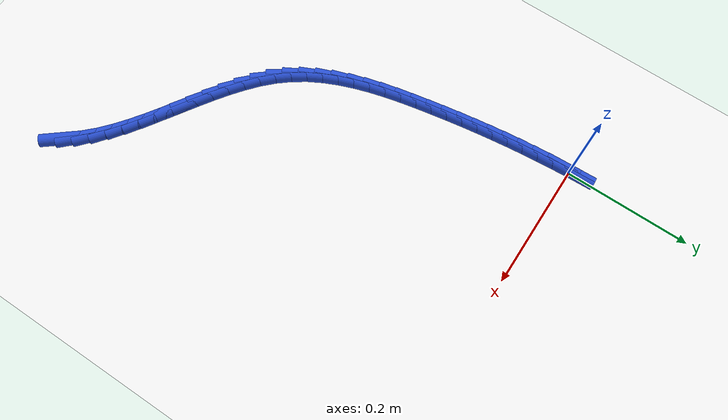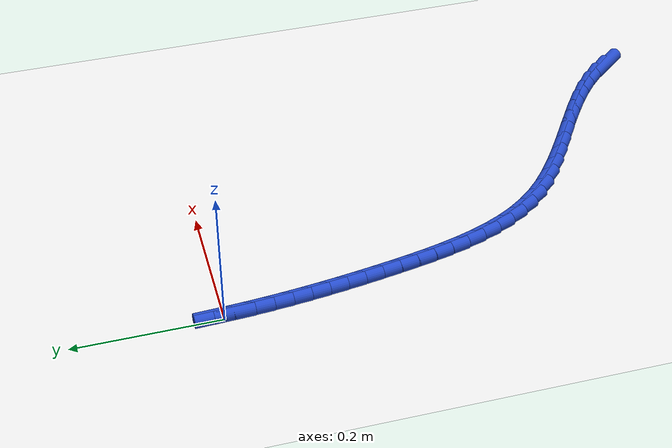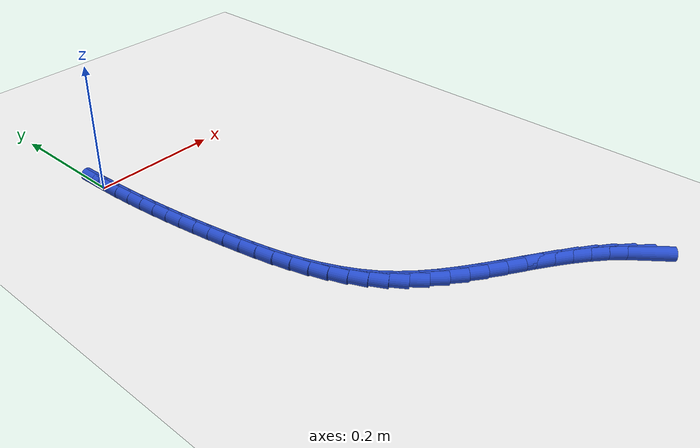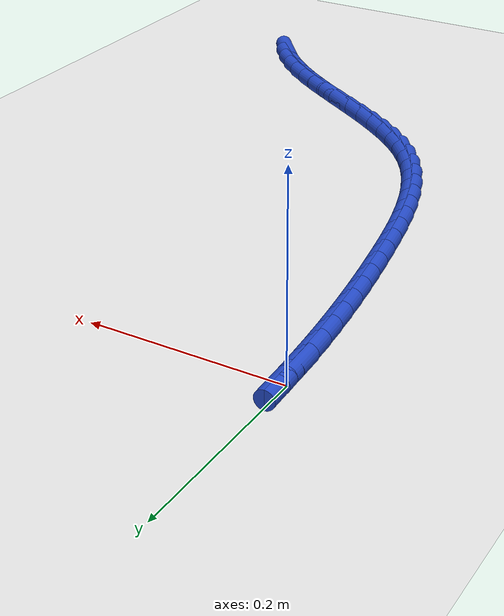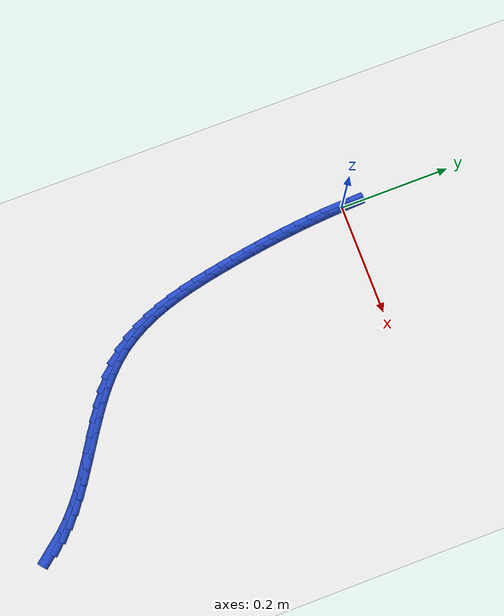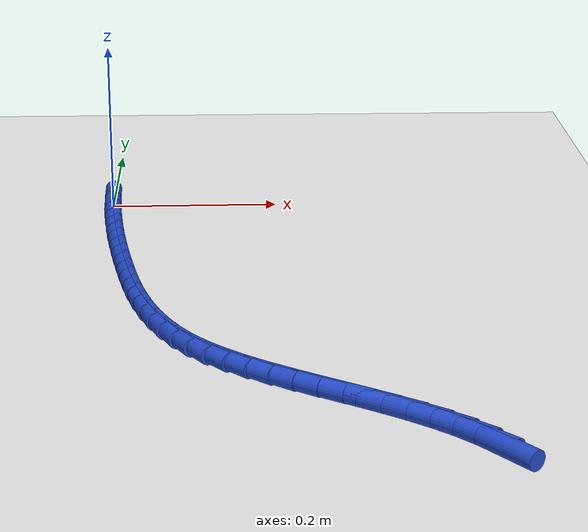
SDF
<sdf version="1.6">
 <world name="default">
  <model name="ground_plane">
   <static>1</static>
   <link name="link">
    <collision name="collision">
     <geometry><plane><normal>0 0 1</normal><size>100 100</size></plane></geometry>
     <surface><friction><ode><mu>100</mu><mu2>50</mu2></ode></friction></surface>
    </collision>
    <visual name="visual">
     <cast_shadows>0</cast_shadows>
     <geometry><plane><normal>0 0 1</normal><size>100 100</size></plane></geometry>
     <material>
      <script><uri>file://media/materials/scripts/gazebo.material</uri><name>Gazebo/WhiteGlow</name></script>
     </material>
    </visual>
   </link>
  </model>
  <model name="line">
   <link name="link_0">
    <pose>7.589415207398531e-18 -2.0816681711721685e-17 0.01 0 1.57 -1.529208545914777</pose>
    <collision name="collision">
     <geometry><cylinder><radius>0.01</radius><length>0.08</length></cylinder></geometry>
    </collision>
    <visual name="visual">
     <material>
      <script><name>Gazebo/Blue</name><uri>file://media/materials/scripts/gazebo.material</uri></script>
     </material>
     <geometry><cylinder><radius>0.01</radius><length>0.08</length></cylinder></geometry>
    </visual>
   </link>
   <link name="link_238">
    <pose>0.3786932814199983 -0.6701580470066092 0.01 0 1.57 -0.8928095195751697</pose>
    <collision name="collision">
     <geometry><cylinder><radius>0.01</radius><length>0.08</length></cylinder></geometry>
    </collision>
    <visual name="visual">
     <material>
      <script><name>Gazebo/Blue</name><uri>file://media/materials/scripts/gazebo.material</uri></script>
     </material>
     <geometry><cylinder><radius>0.01</radius><length>0.08</length></cylinder></geometry>
    </visual>
   </link>
   <link name="link_239">
    <pose>0.36328954359764976 -0.6510309784829611 0.01 0 1.57 -0.7975364531974951</pose>
    <collision name="collision">
     <geometry><cylinder><radius>0.01</radius><length>0.08</length></cylinder></geometry>
    </collision>
    <visual name="visual">
     <material>
      <script><name>Gazebo/Blue</name><uri>file://media/materials/scripts/gazebo.material</uri></script>
     </material>
     <geometry><cylinder><radius>0.01</radius><length>0.08</length></cylinder></geometry>
    </visual>
   </link>
   <link name="link_240">
    <pose>0.3459330431427901 -0.633247922964782 0.01 0 1.57 -0.7202766609170019</pose>
    <collision name="collision">
     <geometry><cylinder><radius>0.01</radius><length>0.08</length></cylinder></geometry>
    </collision>
    <visual name="visual">
     <material>
      <script><name>Gazebo/Blue</name><uri>file://media/materials/scripts/gazebo.material</uri></script>
     </material>
     <geometry><cylinder><radius>0.01</radius><length>0.08</length></cylinder></geometry>
    </visual>
   </link>
   <link name="link_241">
    <pose>0.32694284852817956 -0.6165829352449441 0.01 0 1.57 -0.6604361286175688</pose>
    <collision name="collision">
     <geometry><cylinder><radius>0.01</radius><length>0.08</length></cylinder></geometry>
    </collision>
    <visual name="visual">
     <material>
      <script><name>Gazebo/Blue</name><uri>file://media/materials/scripts/gazebo.material</uri></script>
     </material>
     <geometry><cylinder><radius>0.01</radius><length>0.08</length></cylinder></geometry>
    </visual>
   </link>
   <link name="link_242">
    <pose>0.30663802822657676 -0.6008100701163169 0.01 0 1.57 -0.6168881803582916</pose>
    <collision name="collision">
     <geometry><cylinder><radius>0.01</radius><length>0.08</length></cylinder></geometry>
    </collision>
    <visual name="visual">
     <material>
      <script><name>Gazebo/Blue</name><uri>file://media/materials/scripts/gazebo.material</uri></script>
     </material>
     <geometry><cylinder><radius>0.01</radius><length>0.08</length></cylinder></geometry>
    </visual>
   </link>
   <link name="link_243">
    <pose>0.28533765071074196 -0.5857033823717723 0.01 0 1.57 -0.5884816346551972</pose>
    <collision name="collision">
     <geometry><cylinder><radius>0.01</radius><length>0.08</length></cylinder></geometry>
    </collision>
    <visual name="visual">
     <material>
      <script><name>Gazebo/Blue</name><uri>file://media/materials/scripts/gazebo.material</uri></script>
     </material>
     <geometry><cylinder><radius>0.01</radius><length>0.08</length></cylinder></geometry>
    </visual>
   </link>
   <link name="link_244">
    <pose>0.2633607844534336 -0.5710369268041807 0.01 0 1.57 -0.5743228646210268</pose>
    <collision name="collision">
     <geometry><cylinder><radius>0.01</radius><length>0.08</length></cylinder></geometry>
    </collision>
    <visual name="visual">
     <material>
      <script><name>Gazebo/Blue</name><uri>file://media/materials/scripts/gazebo.material</uri></script>
     </material>
     <geometry><cylinder><radius>0.01</radius><length>0.08</length></cylinder></geometry>
    </visual>
   </link>
   <link name="link_245">
    <pose>0.24102649792741215 -0.5565847582064136 0.01 0 1.57 -0.5739081844951472</pose>
    <collision name="collision">
     <geometry><cylinder><radius>0.01</radius><length>0.08</length></cylinder></geometry>
    </collision>
    <visual name="visual">
     <material>
      <script><name>Gazebo/Blue</name><uri>file://media/materials/scripts/gazebo.material</uri></script>
     </material>
     <geometry><cylinder><radius>0.01</radius><length>0.08</length></cylinder></geometry>
    </visual>
   </link>
   <link name="link_246">
    <pose>0.21865385960543662 -0.5421209313713415 0.01 0 1.57 -0.5871711489454571</pose>
    <collision name="collision">
     <geometry><cylinder><radius>0.01</radius><length>0.08</length></cylinder></geometry>
    </collision>
    <visual name="visual">
     <material>
      <script><name>Gazebo/Blue</name><uri>file://media/materials/scripts/gazebo.material</uri></script>
     </material>
     <geometry><cylinder><radius>0.01</radius><length>0.08</length></cylinder></geometry>
    </visual>
   </link>
   <link name="link_247">
    <pose>0.19656193796026564 -0.5274195010918352 0.01 0 1.57 -0.6144784322481841</pose>
    <collision name="collision">
     <geometry><cylinder><radius>0.01</radius><length>0.08</length></cylinder></geometry>
    </collision>
    <visual name="visual">
     <material>
      <script><name>Gazebo/Blue</name><uri>file://media/materials/scripts/gazebo.material</uri></script>
     </material>
     <geometry><cylinder><radius>0.01</radius><length>0.08</length></cylinder></geometry>
    </visual>
   </link>
   <link name="link_248">
    <pose>0.17506980146465995 -0.5122545221607662 0.01 0 1.57 -0.6565766584552118</pose>
    <collision name="collision">
     <geometry><cylinder><radius>0.01</radius><length>0.08</length></cylinder></geometry>
    </collision>
    <visual name="visual">
     <material>
      <script><name>Gazebo/Blue</name><uri>file://media/materials/scripts/gazebo.material</uri></script>
     </material>
     <geometry><cylinder><radius>0.01</radius><length>0.08</length></cylinder></geometry>
    </visual>
   </link>
   <link name="link_249">
    <pose>0.15449651859137772 -0.4964000493710047 0.01 0 1.57 -0.7144626929070189</pose>
    <collision name="collision">
     <geometry><cylinder><radius>0.01</radius><length>0.08</length></cylinder></geometry>
    </collision>
    <visual name="visual">
     <material>
      <script><name>Gazebo/Blue</name><uri>file://media/materials/scripts/gazebo.material</uri></script>
     </material>
     <geometry><cylinder><radius>0.01</radius><length>0.08</length></cylinder></geometry>
    </visual>
   </link>
   <link name="link_250">
    <pose>0.13516115781317958 -0.4796301375154224 0.01 0 1.57 -0.7891226393361512</pose>
    <collision name="collision">
     <geometry><cylinder><radius>0.01</radius><length>0.08</length></cylinder></geometry>
    </collision>
    <visual name="visual">
     <material>
      <script><name>Gazebo/Blue</name><uri>file://media/materials/scripts/gazebo.material</uri></script>
     </material>
     <geometry><cylinder><radius>0.01</radius><length>0.08</length></cylinder></geometry>
    </visual>
   </link>
   <link name="link_251">
    <pose>0.11738278760282383 -0.46171884138688946 0.01 0 1.57 -0.8809287177060735</pose>
    <collision name="collision">
     <geometry><cylinder><radius>0.01</radius><length>0.08</length></cylinder></geometry>
    </collision>
    <visual name="visual">
     <material>
      <script><name>Gazebo/Blue</name><uri>file://media/materials/scripts/gazebo.material</uri></script>
     </material>
     <geometry><cylinder><radius>0.01</radius><length>0.08</length></cylinder></geometry>
    </visual>
   </link>
   <link name="link_252">
    <pose>0.1014776402446997 -0.4424425281697973 0.01 0 1.57 -0.9797099002305909</pose>
    <collision name="collision">
     <geometry><cylinder><radius>0.01</radius><length>0.08</length></cylinder></geometry>
    </collision>
    <visual name="visual">
     <material>
      <script><name>Gazebo/Blue</name><uri>file://media/materials/scripts/gazebo.material</uri></script>
     </material>
     <geometry><cylinder><radius>0.01</radius><length>0.08</length></cylinder></geometry>
    </visual>
   </link>
   <link name="link_253">
    <pose>0.08757618075665626 -0.42172902418860025 0.01 0 1.57 -1.0688154870758266</pose>
    <collision name="collision">
     <geometry><cylinder><radius>0.01</radius><length>0.08</length></cylinder></geometry>
    </collision>
    <visual name="visual">
     <material>
      <script><name>Gazebo/Blue</name><uri>file://media/materials/scripts/gazebo.material</uri></script>
     </material>
     <geometry><cylinder><radius>0.01</radius><length>0.08</length></cylinder></geometry>
    </visual>
   </link>
   <link name="link_254">
    <pose>0.07551159010317407 -0.39974853639765534 0.01 0 1.57 -1.1462749408236719</pose>
    <collision name="collision">
     <geometry><cylinder><radius>0.01</radius><length>0.08</length></cylinder></geometry>
    </collision>
    <visual name="visual">
     <material>
      <script><name>Gazebo/Blue</name><uri>file://media/materials/scripts/gazebo.material</uri></script>
     </material>
     <geometry><cylinder><radius>0.01</radius><length>0.08</length></cylinder></geometry>
    </visual>
   </link>
   <link name="link_255">
    <pose>0.06509035216392434 -0.3766930383282958 0.01 0 1.57 -1.2122289033944436</pose>
    <collision name="collision">
     <geometry><cylinder><radius>0.01</radius><length>0.08</length></cylinder></geometry>
    </collision>
    <visual name="visual">
     <material>
      <script><name>Gazebo/Blue</name><uri>file://media/materials/scripts/gazebo.material</uri></script>
     </material>
     <geometry><cylinder><radius>0.01</radius><length>0.08</length></cylinder></geometry>
    </visual>
   </link>
   <link name="link_256">
    <pose>0.05611895081857959 -0.35275450351185755 0.01 0 1.57 -1.2672335329865319</pose>
    <collision name="collision">
     <geometry><cylinder><radius>0.01</radius><length>0.08</length></cylinder></geometry>
    </collision>
    <visual name="visual">
     <material>
      <script><name>Gazebo/Blue</name><uri>file://media/materials/scripts/gazebo.material</uri></script>
     </material>
     <geometry><cylinder><radius>0.01</radius><length>0.08</length></cylinder></geometry>
    </visual>
   </link>
   <link name="link_257">
    <pose>0.04840386994681133 -0.32812490547967416 0.01 0 1.57 -1.3120044205931936</pose>
    <collision name="collision">
     <geometry><cylinder><radius>0.01</radius><length>0.08</length></cylinder></geometry>
    </collision>
    <visual name="visual">
     <material>
      <script><name>Gazebo/Blue</name><uri>file://media/materials/scripts/gazebo.material</uri></script>
     </material>
     <geometry><cylinder><radius>0.01</radius><length>0.08</length></cylinder></geometry>
    </visual>
   </link>
   <link name="link_258">
    <pose>0.04175159342829134 -0.30299621776308 0.01 0 1.57 -1.3472403327465097</pose>
    <collision name="collision">
     <geometry><cylinder><radius>0.01</radius><length>0.08</length></cylinder></geometry>
    </collision>
    <visual name="visual">
     <material>
      <script><name>Gazebo/Blue</name><uri>file://media/materials/scripts/gazebo.material</uri></script>
     </material>
     <geometry><cylinder><radius>0.01</radius><length>0.08</length></cylinder></geometry>
    </visual>
   </link>
   <link name="link_259">
    <pose>0.035968605142691894 -0.27756041389341074 0.01 0 1.57 -1.3735126547087109</pose>
    <collision name="collision">
     <geometry><cylinder><radius>0.01</radius><length>0.08</length></cylinder></geometry>
    </collision>
    <visual name="visual">
     <material>
      <script><name>Gazebo/Blue</name><uri>file://media/materials/scripts/gazebo.material</uri></script>
     </material>
     <geometry><cylinder><radius>0.01</radius><length>0.08</length></cylinder></geometry>
    </visual>
   </link>
   <link name="link_260">
    <pose>0.03086138896968451 -0.2520094674019994 0.01 0 1.57 -1.3912037899124268</pose>
    <collision name="collision">
     <geometry><cylinder><radius>0.01</radius><length>0.08</length></cylinder></geometry>
    </collision>
    <visual name="visual">
     <material>
      <script><name>Gazebo/Blue</name><uri>file://media/materials/scripts/gazebo.material</uri></script>
     </material>
     <geometry><cylinder><radius>0.01</radius><length>0.08</length></cylinder></geometry>
    </visual>
   </link>
   <link name="link_261">
    <pose>0.026236567072604976 -0.2265351769128536 0.01 0 1.57 -1.4028610283618295</pose>
    <collision name="collision">
     <geometry><cylinder><radius>0.01</radius><length>0.08</length></cylinder></geometry>
    </collision>
    <visual name="visual">
     <material>
      <script><name>Gazebo/Blue</name><uri>file://media/materials/scripts/gazebo.material</uri></script>
     </material>
     <geometry><cylinder><radius>0.01</radius><length>0.08</length></cylinder></geometry>
    </visual>
   </link>
   <link name="link_262">
    <pose>0.021952315677051054 -0.20126413317885675 0.01 0 1.57 -1.4144585355271075</pose>
    <collision name="collision">
     <geometry><cylinder><radius>0.01</radius><length>0.08</length></cylinder></geometry>
    </collision>
    <visual name="visual">
     <material>
      <script><name>Gazebo/Blue</name><uri>file://media/materials/scripts/gazebo.material</uri></script>
     </material>
     <geometry><cylinder><radius>0.01</radius><length>0.08</length></cylinder></geometry>
    </visual>
   </link>
   <link name="link_263">
    <pose>0.017995353515125406 -0.17616034067298178 0.01 0 1.57 -1.4268539042964137</pose>
    <collision name="collision">
     <geometry><cylinder><radius>0.01</radius><length>0.08</length></cylinder></geometry>
    </collision>
    <visual name="visual">
     <material>
      <script><name>Gazebo/Blue</name><uri>file://media/materials/scripts/gazebo.material</uri></script>
     </material>
     <geometry><cylinder><radius>0.01</radius><length>0.08</length></cylinder></geometry>
    </visual>
   </link>
   <link name="link_264">
    <pose>0.014372100623455975 -0.1511628847819029 0.01 0 1.57 -1.4399704580244268</pose>
    <collision name="collision">
     <geometry><cylinder><radius>0.01</radius><length>0.08</length></cylinder></geometry>
    </collision>
    <visual name="visual">
     <material>
      <script><name>Gazebo/Blue</name><uri>file://media/materials/scripts/gazebo.material</uri></script>
     </material>
     <geometry><cylinder><radius>0.01</radius><length>0.08</length></cylinder></geometry>
    </visual>
   </link>
   <link name="link_265">
    <pose>0.011088977038671146 -0.1262108508922972 0.01 0 1.57 -1.45371846823691</pose>
    <collision name="collision">
     <geometry><cylinder><radius>0.01</radius><length>0.08</length></cylinder></geometry>
    </collision>
    <visual name="visual">
     <material>
      <script><name>Gazebo/Blue</name><uri>file://media/materials/scripts/gazebo.material</uri></script>
     </material>
     <geometry><cylinder><radius>0.01</radius><length>0.08</length></cylinder></geometry>
    </visual>
   </link>
   <link name="link_266">
    <pose>0.00815240279739889 -0.10124332439083879 0.01 0 1.57 -1.4679970795431267</pose>
    <collision name="collision">
     <geometry><cylinder><radius>0.01</radius><length>0.08</length></cylinder></geometry>
    </collision>
    <visual name="visual">
     <material>
      <script><name>Gazebo/Blue</name><uri>file://media/materials/scripts/gazebo.material</uri></script>
     </material>
     <geometry><cylinder><radius>0.01</radius><length>0.08</length></cylinder></geometry>
    </visual>
   </link>
   <link name="link_267">
    <pose>0.0055687979362675395 -0.07619939066420478 0.01 0 1.57 -1.482696747478388</pose>
    <collision name="collision">
     <geometry><cylinder><radius>0.01</radius><length>0.08</length></cylinder></geometry>
    </collision>
    <visual name="visual">
     <material>
      <script><name>Gazebo/Blue</name><uri>file://media/materials/scripts/gazebo.material</uri></script>
     </material>
     <geometry><cylinder><radius>0.01</radius><length>0.08</length></cylinder></geometry>
    </visual>
   </link>
   <link name="link_268">
    <pose>0.0033445824919051724 -0.05101813509907005 0.01 0 1.57 -1.497702068984255</pose>
    <collision name="collision">
     <geometry><cylinder><radius>0.01</radius><length>0.08</length></cylinder></geometry>
    </collision>
    <visual name="visual">
     <material>
      <script><name>Gazebo/Blue</name><uri>file://media/materials/scripts/gazebo.material</uri></script>
     </material>
     <geometry><cylinder><radius>0.01</radius><length>0.08</length></cylinder></geometry>
    </visual>
   </link>
   <link name="link_269">
    <pose>0.0014861765009399042 -0.025638643082109447 0.01 0 1.57 -1.512894850398167</pose>
    <collision name="collision">
     <geometry><cylinder><radius>0.01</radius><length>0.08</length></cylinder></geometry>
    </collision>
    <visual name="visual">
     <material>
      <script><name>Gazebo/Blue</name><uri>file://media/materials/scripts/gazebo.material</uri></script>
     </material>
     <geometry><cylinder><radius>0.01</radius><length>0.08</length></cylinder></geometry>
    </visual>
   </link>
   <link name="link_270">
    <pose>8.673617379884035e-18 -8.326672684688674e-17 0.01 0 1.57 -1.52815723762275</pose>
    <collision name="collision">
     <geometry><cylinder><radius>0.01</radius><length>0.08</length></cylinder></geometry>
    </collision>
    <visual name="visual">
     <material>
      <script><name>Gazebo/Blue</name><uri>file://media/materials/scripts/gazebo.material</uri></script>
     </material>
     <geometry><cylinder><radius>0.01</radius><length>0.08</length></cylinder></geometry>
    </visual>
   </link>
  </model>
 </world>
</sdf>
